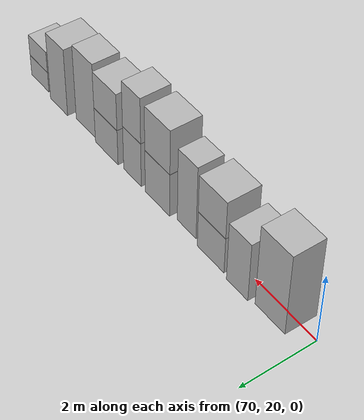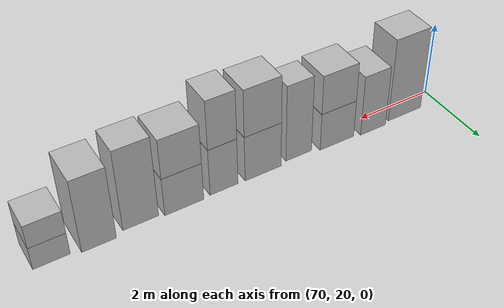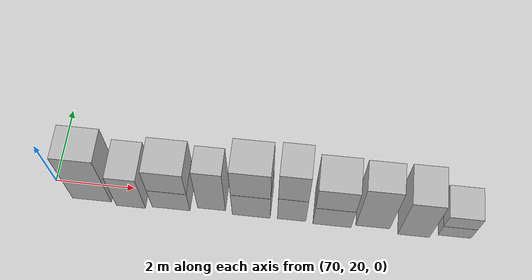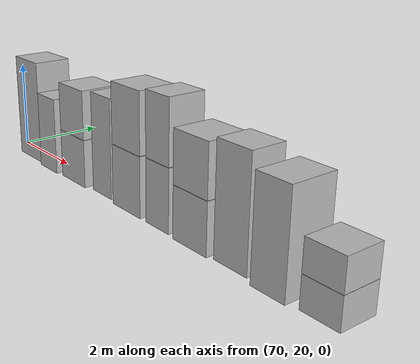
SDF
<sdf version="1.5">
 <world name="default">
  <model name="ground_plane">
   <static>true</static>
   <link name="link">
    <collision name="collision">
     <geometry><plane><normal>0 0 1</normal><size>250 250</size></plane></geometry>
     <surface><friction><ode><mu>1</mu><mu2>1</mu2></ode></friction></surface>
    </collision>
    <visual name="grass">
     <cast_shadows>false</cast_shadows>
     <geometry><mesh><uri>file://grass_plane/meshes/grass_plane.dae</uri></mesh></geometry>
    </visual>
   </link>
  </model>
  <model name="Cardboard_box_206">
   <link name="link_0">
    <pose>71 20 0 0 0 0</pose>
    <inertial>
     <mass>1</mass>
     <inertia>
      <ixx>0.166667</ixx>
      <ixy>0</ixy>
      <ixz>0</ixz>
      <iyy>0.166667</iyy>
      <iyz>0</iyz>
      <izz>0.166667</izz>
     </inertia>
    </inertial>
    <collision name="collision">
     <geometry>
      <mesh>
       <uri>model://Cardboard_box/meshes/cardboard_box.dae</uri>
       <scale>2.47093128426 2.11386461074 5.93589480557</scale>
      </mesh>
     </geometry>
    </collision>
    <visual name="visual">
     <geometry>
      <mesh>
       <uri>model://Cardboard_box/meshes/cardboard_box.dae</uri>
       <scale>2.47093128426 2.11386461074 5.93589480557</scale>
      </mesh>
     </geometry>
    </visual>
   </link>
   <static>1</static>
  </model>
  <model name="Cardboard_box_207">
   <link name="link_0">
    <pose>72 20 0 0 0 0</pose>
    <inertial>
     <mass>1</mass>
     <inertia>
      <ixx>0.166667</ixx>
      <ixy>0</ixy>
      <ixz>0</ixz>
      <iyy>0.166667</iyy>
      <iyz>0</iyz>
      <izz>0.166667</izz>
     </inertia>
    </inertial>
    <collision name="collision">
     <geometry>
      <mesh>
       <uri>model://Cardboard_box/meshes/cardboard_box.dae</uri>
       <scale>1.84144287139 2.49565587087 4.31572653214</scale>
      </mesh>
     </geometry>
    </collision>
    <visual name="visual">
     <geometry>
      <mesh>
       <uri>model://Cardboard_box/meshes/cardboard_box.dae</uri>
       <scale>1.84144287139 2.49565587087 4.31572653214</scale>
      </mesh>
     </geometry>
    </visual>
   </link>
   <static>1</static>
  </model>
  <model name="Cardboard_box_208">
   <link name="link_0">
    <pose>73 20 0 0 0 0</pose>
    <inertial>
     <mass>1</mass>
     <inertia>
      <ixx>0.166667</ixx>
      <ixy>0</ixy>
      <ixz>0</ixz>
      <iyy>0.166667</iyy>
      <iyz>0</iyz>
      <izz>0.166667</izz>
     </inertia>
    </inertial>
    <collision name="collision">
     <geometry>
      <mesh>
       <uri>model://Cardboard_box/meshes/cardboard_box.dae</uri>
       <scale>2.39112396808 2.21013287661 2.67999329638</scale>
      </mesh>
     </geometry>
    </collision>
    <visual name="visual">
     <geometry>
      <mesh>
       <uri>model://Cardboard_box/meshes/cardboard_box.dae</uri>
       <scale>2.39112396808 2.21013287661 2.67999329638</scale>
      </mesh>
     </geometry>
    </visual>
   </link>
   <static>1</static>
  </model>
  <model name="Cardboard_box_top_208">
   <link name="link_0">
    <pose>73 20 1.07199731855 0 0 0</pose>
    <inertial>
     <mass>1</mass>
     <inertia>
      <ixx>0.166667</ixx>
      <ixy>0</ixy>
      <ixz>0</ixz>
      <iyy>0.166667</iyy>
      <iyz>0</iyz>
      <izz>0.166667</izz>
     </inertia>
    </inertial>
    <collision name="collision">
     <geometry>
      <mesh>
       <uri>model://Cardboard_box/meshes/cardboard_box.dae</uri>
       <scale>2.39112396808 2.21013287661 2.67999329638</scale>
      </mesh>
     </geometry>
    </collision>
    <visual name="visual">
     <geometry>
      <mesh>
       <uri>model://Cardboard_box/meshes/cardboard_box.dae</uri>
       <scale>2.39112396808 2.21013287661 2.67999329638</scale>
      </mesh>
     </geometry>
    </visual>
   </link>
   <static>1</static>
  </model>
  <model name="Cardboard_box_209">
   <link name="link_0">
    <pose>74 20 0 0 0 0</pose>
    <inertial>
     <mass>1</mass>
     <inertia>
      <ixx>0.166667</ixx>
      <ixy>0</ixy>
      <ixz>0</ixz>
      <iyy>0.166667</iyy>
      <iyz>0</iyz>
      <izz>0.166667</izz>
     </inertia>
    </inertial>
    <collision name="collision">
     <geometry>
      <mesh>
       <uri>model://Cardboard_box/meshes/cardboard_box.dae</uri>
       <scale>1.75153484866 1.71702259097 5.42968691438</scale>
      </mesh>
     </geometry>
    </collision>
    <visual name="visual">
     <geometry>
      <mesh>
       <uri>model://Cardboard_box/meshes/cardboard_box.dae</uri>
       <scale>1.75153484866 1.71702259097 5.42968691438</scale>
      </mesh>
     </geometry>
    </visual>
   </link>
   <static>1</static>
  </model>
  <model name="Cardboard_box_210">
   <link name="link_0">
    <pose>75 20 0 0 0 0</pose>
    <inertial>
     <mass>1</mass>
     <inertia>
      <ixx>0.166667</ixx>
      <ixy>0</ixy>
      <ixz>0</ixz>
      <iyy>0.166667</iyy>
      <iyz>0</iyz>
      <izz>0.166667</izz>
     </inertia>
    </inertial>
    <collision name="collision">
     <geometry>
      <mesh>
       <uri>model://Cardboard_box/meshes/cardboard_box.dae</uri>
       <scale>2.37469924488 2.11002291518 3.2185350741</scale>
      </mesh>
     </geometry>
    </collision>
    <visual name="visual">
     <geometry>
      <mesh>
       <uri>model://Cardboard_box/meshes/cardboard_box.dae</uri>
       <scale>2.37469924488 2.11002291518 3.2185350741</scale>
      </mesh>
     </geometry>
    </visual>
   </link>
   <static>1</static>
  </model>
  <model name="Cardboard_box_top_210">
   <link name="link_0">
    <pose>75 20 1.28741402964 0 0 0</pose>
    <inertial>
     <mass>1</mass>
     <inertia>
      <ixx>0.166667</ixx>
      <ixy>0</ixy>
      <ixz>0</ixz>
      <iyy>0.166667</iyy>
      <iyz>0</iyz>
      <izz>0.166667</izz>
     </inertia>
    </inertial>
    <collision name="collision">
     <geometry>
      <mesh>
       <uri>model://Cardboard_box/meshes/cardboard_box.dae</uri>
       <scale>2.37469924488 2.11002291518 3.2185350741</scale>
      </mesh>
     </geometry>
    </collision>
    <visual name="visual">
     <geometry>
      <mesh>
       <uri>model://Cardboard_box/meshes/cardboard_box.dae</uri>
       <scale>2.37469924488 2.11002291518 3.2185350741</scale>
      </mesh>
     </geometry>
    </visual>
   </link>
   <static>1</static>
  </model>
  <model name="Cardboard_box_211">
   <link name="link_0">
    <pose>76 20 0 0 0 0</pose>
    <inertial>
     <mass>1</mass>
     <inertia>
      <ixx>0.166667</ixx>
      <ixy>0</ixy>
      <ixz>0</ixz>
      <iyy>0.166667</iyy>
      <iyz>0</iyz>
      <izz>0.166667</izz>
     </inertia>
    </inertial>
    <collision name="collision">
     <geometry>
      <mesh>
       <uri>model://Cardboard_box/meshes/cardboard_box.dae</uri>
       <scale>1.7773138406 2.04871758195 3.31233012451</scale>
      </mesh>
     </geometry>
    </collision>
    <visual name="visual">
     <geometry>
      <mesh>
       <uri>model://Cardboard_box/meshes/cardboard_box.dae</uri>
       <scale>1.7773138406 2.04871758195 3.31233012451</scale>
      </mesh>
     </geometry>
    </visual>
   </link>
   <static>1</static>
  </model>
  <model name="Cardboard_box_top_211">
   <link name="link_0">
    <pose>76 20 1.3249320498 0 0 0</pose>
    <inertial>
     <mass>1</mass>
     <inertia>
      <ixx>0.166667</ixx>
      <ixy>0</ixy>
      <ixz>0</ixz>
      <iyy>0.166667</iyy>
      <iyz>0</iyz>
      <izz>0.166667</izz>
     </inertia>
    </inertial>
    <collision name="collision">
     <geometry>
      <mesh>
       <uri>model://Cardboard_box/meshes/cardboard_box.dae</uri>
       <scale>1.7773138406 2.04871758195 3.31233012451</scale>
      </mesh>
     </geometry>
    </collision>
    <visual name="visual">
     <geometry>
      <mesh>
       <uri>model://Cardboard_box/meshes/cardboard_box.dae</uri>
       <scale>1.7773138406 2.04871758195 3.31233012451</scale>
      </mesh>
     </geometry>
    </visual>
   </link>
   <static>1</static>
  </model>
  <model name="Cardboard_box_212">
   <link name="link_0">
    <pose>77 20 0 0 0 0</pose>
    <inertial>
     <mass>1</mass>
     <inertia>
      <ixx>0.166667</ixx>
      <ixy>0</ixy>
      <ixz>0</ixz>
      <iyy>0.166667</iyy>
      <iyz>0</iyz>
      <izz>0.166667</izz>
     </inertia>
    </inertial>
    <collision name="collision">
     <geometry>
      <mesh>
       <uri>model://Cardboard_box/meshes/cardboard_box.dae</uri>
       <scale>2.37574371858 2.23867670284 2.68144212993</scale>
      </mesh>
     </geometry>
    </collision>
    <visual name="visual">
     <geometry>
      <mesh>
       <uri>model://Cardboard_box/meshes/cardboard_box.dae</uri>
       <scale>2.37574371858 2.23867670284 2.68144212993</scale>
      </mesh>
     </geometry>
    </visual>
   </link>
   <static>1</static>
  </model>
  <model name="Cardboard_box_top_212">
   <link name="link_0">
    <pose>77 20 1.07257685197 0 0 0</pose>
    <inertial>
     <mass>1</mass>
     <inertia>
      <ixx>0.166667</ixx>
      <ixy>0</ixy>
      <ixz>0</ixz>
      <iyy>0.166667</iyy>
      <iyz>0</iyz>
      <izz>0.166667</izz>
     </inertia>
    </inertial>
    <collision name="collision">
     <geometry>
      <mesh>
       <uri>model://Cardboard_box/meshes/cardboard_box.dae</uri>
       <scale>2.37574371858 2.23867670284 2.68144212993</scale>
      </mesh>
     </geometry>
    </collision>
    <visual name="visual">
     <geometry>
      <mesh>
       <uri>model://Cardboard_box/meshes/cardboard_box.dae</uri>
       <scale>2.37574371858 2.23867670284 2.68144212993</scale>
      </mesh>
     </geometry>
    </visual>
   </link>
   <static>1</static>
  </model>
  <model name="Cardboard_box_213">
   <link name="link_0">
    <pose>78 20 0 0 0 0</pose>
    <inertial>
     <mass>1</mass>
     <inertia>
      <ixx>0.166667</ixx>
      <ixy>0</ixy>
      <ixz>0</ixz>
      <iyy>0.166667</iyy>
      <iyz>0</iyz>
      <izz>0.166667</izz>
     </inertia>
    </inertial>
    <collision name="collision">
     <geometry>
      <mesh>
       <uri>model://Cardboard_box/meshes/cardboard_box.dae</uri>
       <scale>2.09352647411 1.88100144474 5.62453239478</scale>
      </mesh>
     </geometry>
    </collision>
    <visual name="visual">
     <geometry>
      <mesh>
       <uri>model://Cardboard_box/meshes/cardboard_box.dae</uri>
       <scale>2.09352647411 1.88100144474 5.62453239478</scale>
      </mesh>
     </geometry>
    </visual>
   </link>
   <static>1</static>
  </model>
  <model name="Cardboard_box_214">
   <link name="link_0">
    <pose>79 20 0 0 0 0</pose>
    <inertial>
     <mass>1</mass>
     <inertia>
      <ixx>0.166667</ixx>
      <ixy>0</ixy>
      <ixz>0</ixz>
      <iyy>0.166667</iyy>
      <iyz>0</iyz>
      <izz>0.166667</izz>
     </inertia>
    </inertial>
    <collision name="collision">
     <geometry>
      <mesh>
       <uri>model://Cardboard_box/meshes/cardboard_box.dae</uri>
       <scale>1.94410417273 2.47523757689 5.06305672509</scale>
      </mesh>
     </geometry>
    </collision>
    <visual name="visual">
     <geometry>
      <mesh>
       <uri>model://Cardboard_box/meshes/cardboard_box.dae</uri>
       <scale>1.94410417273 2.47523757689 5.06305672509</scale>
      </mesh>
     </geometry>
    </visual>
   </link>
   <static>1</static>
  </model>
  <model name="Cardboard_box_215">
   <link name="link_0">
    <pose>80 20 0 0 0 0</pose>
    <inertial>
     <mass>1</mass>
     <inertia>
      <ixx>0.166667</ixx>
      <ixy>0</ixy>
      <ixz>0</ixz>
      <iyy>0.166667</iyy>
      <iyz>0</iyz>
      <izz>0.166667</izz>
     </inertia>
    </inertial>
    <collision name="collision">
     <geometry>
      <mesh>
       <uri>model://Cardboard_box/meshes/cardboard_box.dae</uri>
       <scale>2.02198726291 2.03637909748 1.56409759522</scale>
      </mesh>
     </geometry>
    </collision>
    <visual name="visual">
     <geometry>
      <mesh>
       <uri>model://Cardboard_box/meshes/cardboard_box.dae</uri>
       <scale>2.02198726291 2.03637909748 1.56409759522</scale>
      </mesh>
     </geometry>
    </visual>
   </link>
   <static>1</static>
  </model>
  <model name="Cardboard_box_top_215">
   <link name="link_0">
    <pose>80 20 0.625639038087 0 0 0</pose>
    <inertial>
     <mass>1</mass>
     <inertia>
      <ixx>0.166667</ixx>
      <ixy>0</ixy>
      <ixz>0</ixz>
      <iyy>0.166667</iyy>
      <iyz>0</iyz>
      <izz>0.166667</izz>
     </inertia>
    </inertial>
    <collision name="collision">
     <geometry>
      <mesh>
       <uri>model://Cardboard_box/meshes/cardboard_box.dae</uri>
       <scale>2.02198726291 2.03637909748 1.56409759522</scale>
      </mesh>
     </geometry>
    </collision>
    <visual name="visual">
     <geometry>
      <mesh>
       <uri>model://Cardboard_box/meshes/cardboard_box.dae</uri>
       <scale>2.02198726291 2.03637909748 1.56409759522</scale>
      </mesh>
     </geometry>
    </visual>
   </link>
   <static>1</static>
  </model>
 </world>
</sdf>
